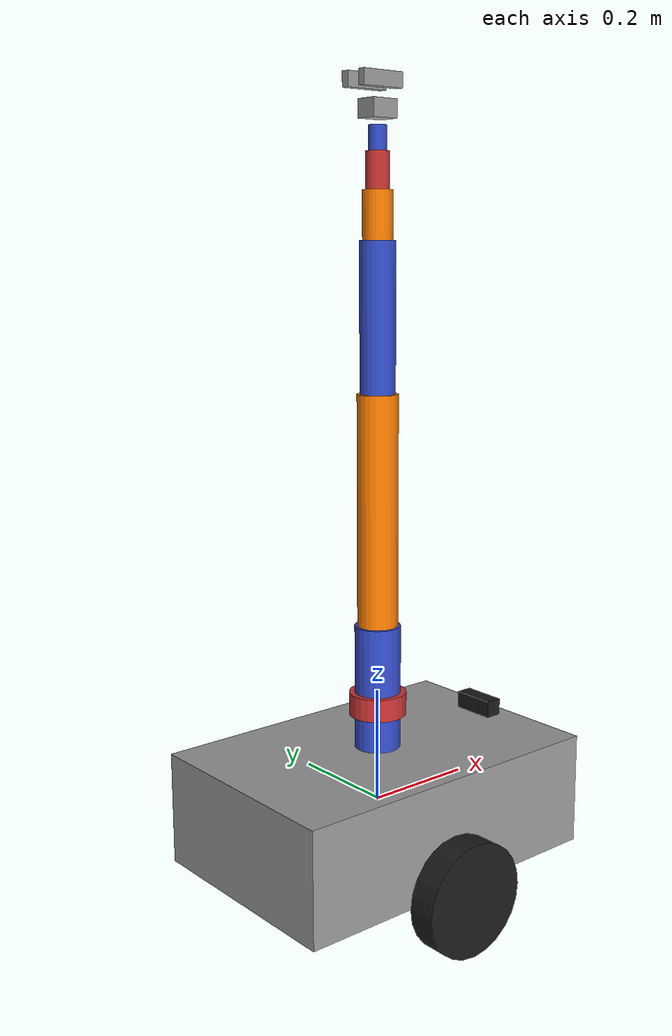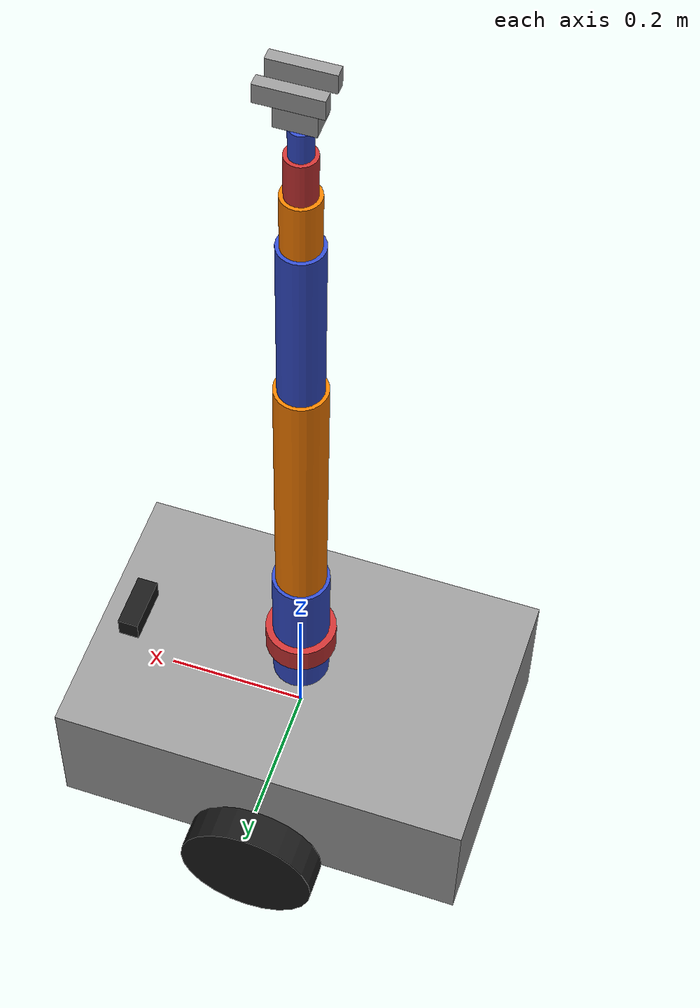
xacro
<?xml version="1.0"?>
<robot xmlns:xacro="http://www.ros.org/wiki/xacro" name="warehouse_mobile_manipulator">

  <!-- PROPERTIES -->
  <xacro:property name="my_pi" value="3.14159265359"/>
  <xacro:property name="mount_height" value="0.02"/>

  <!-- MATERIALS -->
  <material name="blue1">
      <color rgba="0.2 0.3 0.8 1.0"/>
  </material>

  <material name="orange1">
      <color rgba="1.0 0.5 0.0 1.0"/>
  </material>

  <material name="red1">
      <color rgba="0.8 0.2 0.2 1.0"/>
  </material>

  <material name="grey1">
      <color rgba="0.6 0.6 0.6 1.0"/>
  </material>

  <material name="white1">
      <color rgba="0.9 0.9 0.9 1.0"/>
  </material>

  <material name="black1">
      <color rgba="0.1 0.1 0.1 1"/>
  </material>

  <!-- INCLUDE MODULES -->
  <xacro:include filename="$(find warehouse_robot_description)/urdf/mobile_base.urdf.xacro"/>
  <xacro:include filename="$(find warehouse_robot_description)/urdf/manipulator.urdf.xacro"/>
  <xacro:include filename="$(find warehouse_robot_description)/urdf/gripper.urdf.xacro"/>
  <xacro:include filename="$(find warehouse_robot_description)/urdf/sensors.urdf.xacro"/>

  <!-- INSTANTIATE MODULES -->
  <xacro:robot_base/>
  <xacro:manipulator parent="mount_plate"/>
  <xacro:gripper parent="link6"/>
  <xacro:robot_sensors parent="base_link"/>

  <!-- GAZEBO MATERIALS -->
  <gazebo reference="main_base_link">
    <material>Gazebo/Grey</material>
    <mu1>0.2</mu1>
    <mu2>0.2</mu2>
  </gazebo>

  <gazebo reference="right_wheel">
    <material>Gazebo/Black</material>
    <mu1>1.0</mu1>
    <mu2>1.0</mu2>
  </gazebo>

  <gazebo reference="left_wheel">
    <material>Gazebo/Black</material>
    <mu1>1.0</mu1>
    <mu2>1.0</mu2>
  </gazebo>

  <gazebo reference="caster_wheel">
    <material>Gazebo/White</material>
    <mu1>0.1</mu1>
    <mu2>0.1</mu2>
  </gazebo>

  <!-- Arm links -->
  <gazebo reference="link1">
    <material>Gazebo/Blue</material>
    <mu1>0.5</mu1>
    <mu2>0.5</mu2>
  </gazebo>
  <gazebo reference="link2">
    <material>Gazebo/Orange</material>
    <mu1>0.5</mu1>
    <mu2>0.5</mu2>
  </gazebo>
  <gazebo reference="link3">
    <material>Gazebo/Blue</material>
    <mu1>0.5</mu1>
    <mu2>0.5</mu2>
  </gazebo>
  <gazebo reference="link4">
    <material>Gazebo/Orange</material>
    <mu1>0.5</mu1>
    <mu2>0.5</mu2>
  </gazebo>
  <gazebo reference="link5">
    <material>Gazebo/Red</material>
    <mu1>0.5</mu1>
    <mu2>0.5</mu2>
  </gazebo>
  <gazebo reference="link6">
    <material>Gazebo/Blue</material>
    <mu1>0.5</mu1>
    <mu2>0.5</mu2>
  </gazebo>

  <!-- Gripper -->
  <gazebo reference="gripper_base">
    <material>Gazebo/Grey</material>
    <mu1>0.5</mu1>
    <mu2>0.5</mu2>
  </gazebo>
  <gazebo reference="left_finger">
    <material>Gazebo/DarkGrey</material>
    <mu1>1.2</mu1>
    <mu2>1.2</mu2>
  </gazebo>
  <gazebo reference="right_finger">
    <material>Gazebo/DarkGrey</material>
    <mu1>1.2</mu1>
    <mu2>1.2</mu2>
  </gazebo>

  <gazebo>
    <plugin name="gazebo_ros_joint_state_publisher" filename="libgazebo_ros_joint_state_publisher.so">
      <ros>
        <remapping>~/out:=joint_states</remapping>
      </ros>
      <update_rate>50</update_rate>
      <joint_name>joint1</joint_name>
      <joint_name>joint2</joint_name>
      <joint_name>joint3</joint_name>
      <joint_name>joint4</joint_name>
      <joint_name>joint5</joint_name>
      <joint_name>joint6</joint_name>
      <joint_name>left_finger_joint</joint_name>
      <joint_name>right_finger_joint</joint_name>
    </plugin>
  </gazebo>

  <!-- Sensors -->
  <gazebo reference="lidar_link">
    <material>Gazebo/Red</material>
    <sensor type="ray" name="lidar_sensor">
      <pose>0 0 0 0 0 0</pose>
      <visualize>true</visualize>
      <update_rate>10</update_rate>
      <ray>
        <scan>
          <horizontal>
            <samples>360</samples>
            <resolution>1</resolution>
            <min_angle>-3.14159</min_angle>
            <max_angle>3.14159</max_angle>
          </horizontal>
        </scan>
        <range>
          <min>0.10</min>
          <max>30.0</max>
          <resolution>0.01</resolution>
        </range>
      </ray>
      <plugin name="gazebo_ros_lidar" filename="libgazebo_ros_ray_sensor.so">
        <ros>
          <remapping>~/out:=scan</remapping>
        </ros>
        <output_type>sensor_msgs/LaserScan</output_type>
      </plugin>
    </sensor>
  </gazebo>

  <gazebo reference="camera_link">
    <material>Gazebo/Black</material>
    <sensor type="camera" name="camera_sensor">
      <update_rate>30.0</update_rate>
      <camera name="front_camera">
        <horizontal_fov>1.3962634</horizontal_fov>
        <image>
          <width>640</width>
          <height>480</height>
          <format>R8G8B8</format>
        </image>
        <clip>
          <near>0.02</near>
          <far>300</far>
        </clip>
      </camera>
      <plugin name="camera_controller" filename="libgazebo_ros_camera.so">
        <ros>
          <remapping>~/image_raw:=camera/image_raw</remapping>
          <remapping>~/camera_info:=camera/camera_info</remapping>
        </ros>
        <camera_name>front_camera</camera_name>
        <frame_name>camera_link</frame_name>
      </plugin>
    </sensor>
  </gazebo>

  <!-- CONTROL PLUGINS -->
  <gazebo>
    <plugin name="diff_drive_controller" filename="libgazebo_ros_diff_drive.so">
      <ros>
        <namespace>/</namespace>
        <remapping>cmd_vel:=cmd_vel</remapping>
        <remapping>odom:=odom</remapping>
      </ros>
      <update_rate>50</update_rate>
      <left_joint>left_wheel_to_base</left_joint>
      <right_joint>right_wheel_to_base</right_joint>
      <wheel_separation>0.45</wheel_separation>
      <wheel_diameter>0.2</wheel_diameter>
      <max_wheel_torque>20</max_wheel_torque>
      <max_wheel_acceleration>1.0</max_wheel_acceleration>
      <publish_odom>true</publish_odom>
      <publish_odom_tf>true</publish_odom_tf>
      <publish_wheel_tf>true</publish_wheel_tf>
      <odometry_frame>odom</odometry_frame>
      <robot_base_frame>base_link</robot_base_frame>
    </plugin>
  </gazebo>

</robot>

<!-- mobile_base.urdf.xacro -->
<robot xmlns:xacro="http://www.ros.org/wiki/xacro" name="warehouse_robot">

    <!--Robot Base Properties (Variables) -->
    <xacro:property name="base_length" value="0.6"/>
    <xacro:property name="base_width" value="0.4"/>
    <xacro:property name="base_height" value="0.2"/>
    <xacro:property name="base_mass" value="10.0"/>

    <xacro:property name="wheel_radius" value="0.1"/>
    <xacro:property name="wheel_length" value="0.05"/>
    <xacro:property name="wheel_mass" value="0.5"/>

    <xacro:property name="caster_radius" value="0.05"/>
    <xacro:property name="caster_mass" value="1.0"/>

    <xacro:property name="mount_height" value="0.02"/>
    <xacro:property name="mount_radius" value="0.12"/>
    <xacro:property name="mount_mass" value="0.5"/>

    <!--          LINKS                 -->
    <!-- Base Link -->
    <xacro:macro name="robot_base">
        <link name="base_link">
            <visual>
                <origin xyz="0 0 0" rpy="0 0 0"/>
                <geometry>
                    <box size= "${base_length} ${base_width} ${base_height}"/>
                </geometry>
                <material name="grey1"/>
            </visual>
            <collision>
                <origin xyz = "0 0 0" rpy = "0 0 0"/>
                <geometry>
                    <box size="${base_length} ${base_width} ${base_height}"/>
                </geometry>
            </collision>
            <inertial>
                <mass value="${base_mass}" />
                <inertia ixx="0.1" iyy="0.33" izz="0.43"
                        ixy="0.0" ixz="0.0" iyz="0.0"/>
            </inertial>

        </link>

    <!-- Right Wheel -->
        <link name="right_wheel">
            <visual>
                <origin xyz="0 0 0" rpy="1.57 0 0"/>
                <geometry>
                    <cylinder radius="${wheel_radius}" length="${wheel_length}"/>
                </geometry>
                <material name="black1"/>
            </visual>
            <collision>
                <origin xyz="0 0 0" rpy="1.57 0 0"/>
                <geometry>
                    <cylinder radius="${wheel_radius}" length="${wheel_length}"/>
                </geometry>
            </collision>
            <inertial>
                <mass value="${wheel_mass}"/>
                <inertia ixx="0.1" iyy="0.1" izz="0.1"
                    ixy="0.0" ixz="0.0" iyz="0.0"/>
            </inertial>
        </link>

        <!-- Left Wheel-->
        <link name="left_wheel">
            <visual>
                <origin xyz="0 0 0" rpy="1.57 0 0"/>
                <geometry>
                    <cylinder radius="${wheel_radius}" length="${wheel_length}"/>
                </geometry>
                <material name="black1"/>
            </visual>
            <collision>
                <origin xyz="0 0 0" rpy="1.57 0 0"/>
                <geometry>
                    <cylinder radius="${wheel_radius}" length="${wheel_length}"/>
                </geometry>
            </collision>
            <inertial>
                <mass value="${wheel_mass}"/>
                <inertia ixx="0.1" iyy="0.1" izz="0.1"
                    ixy="0.0" ixz="0.0" iyz="0.0"/>
            </inertial>
        </link>

        <!-- Caster Wheel -->
        <link name="caster_wheel">
            <visual>
                <origin xyz="0 0 0" rpy="1.57 0 0"/>
                <geometry>
                    <sphere radius="${caster_radius}"/>
                </geometry>
                <material name="white1"/>
            </visual>
            <collision>
                <origin xyz="0 0 0" rpy="1.57 0 0"/>
                <geometry>
                    <sphere radius="${caster_radius}"/>
                </geometry>
            </collision>
            <inertial>
                <mass value="${caster_mass}"/>
                <inertia ixx="0.1" iyy="0.1" izz="0.1"
                    ixy="0.0" ixz="0.0" iyz="0.0"/>
            </inertial>
        </link>

        <link name="mount_plate">
            <visual>
                <origin xyz="0 0 ${mount_height/2}" rpy="0 0 0"/>
                <geometry>
                    <cylinder radius="${mount_radius}" length="${mount_height}"/>
                </geometry>
                <material name="black1"/>
            </visual>
            <collision>
                <origin xyz="0 0 ${mount_height/2}" rpy="0 0 0"/>
                <geometry>
                    <cylinder radius="${mount_radius}" length="${mount_height}"/>
                </geometry>
            </collision>
            <inertial>
                <mass value="${mount_mass}"/>
                <inertia ixx="${mount_mass*(3*mount_radius*mount_radius + mount_height)/12}"
                            iyy="${mount_mass*(3*mount_radius*mount_radius + mount_height)/12}"
                            izz="${base_mass*(mount_radius*mount_radius)/2}"
                            iyz="0.0"
                            ixz="0.0"
                            ixy="0.0"/>
            </inertial>

        </link>

        <!--          JOINTS                -->
        <!-- right to base wheel -->
        <joint name="right_wheel_to_base" type="continuous">
            <parent link="base_link"/>
            <child link="right_wheel"/>
            <origin xyz="0 -0.225 -${wheel_radius}" rpy="0 0 0"/>
            <axis xyz="0 1 0"/>
        </joint>
        <!-- left wheel to base  -->
        <joint name="left_wheel_to_base" type="continuous">
            <parent link="base_link"/>
            <child link="left_wheel"/>
            <origin xyz="0 0.225 -${wheel_radius}" rpy="0 0 0"/>
            <axis xyz="0 1 0"/>
        </joint>
        <!-- Caster Wheel to base-->
        <joint name="caster_wheel_to_base" type="fixed">
            <parent link="base_link"/>
            <child link="caster_wheel"/>
            <origin xyz="0.25 0 -0.15" rpy="0 0 0"/>
            <axis xyz="0 1 0"/>
        </joint>
        <!-- Mount Link to Base -->
        <joint name="mount_to_base" type="fixed">
            <parent link="base_link"/>
            <child link="mount_plate"/>
            <origin xyz="0 0 0" rpy="0 0 0"/>
        </joint>
    </xacro:macro>

</robot>

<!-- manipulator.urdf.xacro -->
<robot xmlns:xacro="http://www.ros.org/wiki/xacro">

    <!-- LINK DIMENSIONS -->

    <!-- Link 1- Rotating base tower -->
    <xacro:property name="link1_length" value="0.3"/>
    <xacro:property name="link1_radius" value="0.04"/>
    <xacro:property name="link1_mass" value="1.0"/>

    <!-- Link2 - Shoulder Pitch -->
    <xacro:property name="link2_length" value="0.4"/>
    <xacro:property name="link2_radius" value="0.035"/>
    <xacro:property name="link2_mass" value="0.8"/>

    <!-- Link3 - Shoulder Roll -->
    <xacro:property name="link3_length" value="0.25"/>
    <xacro:property name="link3_radius" value="0.03"/>
    <xacro:property name="link3_mass" value="0.6"/>

    <!-- Link4 - Elbow Pitch -->
    <xacro:property name="link4_length" value="0.08"/>
    <xacro:property name="link4_radius" value="0.025"/>
    <xacro:property name="link4_mass" value="0.4"/>

    <!-- Link5 - Shoulder Pitch -->
    <xacro:property name="link5_length" value="0.06"/>
    <xacro:property name="link5_radius" value="0.020"/>
    <xacro:property name="link5_mass" value="0.2"/>

    <!-- Link6 - Shoulder Pitch -->
    <xacro:property name="link6_length" value="0.04"/>
    <xacro:property name="link6_radius" value="0.015"/>
    <xacro:property name="link6_mass" value="0.1"/>

    <!-- INERTIA MACRO -->
    <xacro:macro name="cylinder_inertia" params="mass radius length">
        <inertia ixx = "${mass * (3*radius*radius + length*length)/12}"
                iyy = "${mass * (3*radius*radius + length*length)/12}"
                izz = "${mass * (radius*radius)/2}"
                iyz = "0.0"
                ixz = "0.0"
                ixy = "0.0" />
    </xacro:macro>

    <!-- Main Manipulator Links Macro -->
    <xacro:macro name="manipulator" params="parent">
        <!-- LINK 1 - Rotating Yaw (base Yaw) -->
        <link name="link1">
            <visual>
                <origin xyz="0 0 ${link1_length/2}" rpy="0 0 0"/>
                <geometry>
                    <cylinder radius="${link1_radius}" length="${link1_length}"/>
                </geometry>
                <material name="blue1"/>
            </visual>
            <collision>
                <origin xyz="0 0 ${link1_length/2}" rpy="0 0 0"/>
                <geometry>
                    <cylinder radius="${link1_radius}" length="${link1_length}"/>
                </geometry>
            </collision>
            <inertial>
                <mass value="${link1_mass}"/>
                <xacro:cylinder_inertia mass="${link1_mass}" radius="${link1_radius}" length="${link1_length}"/>
                <origin xyz="0 0 ${link1_length/2}" rpy = "0 0 0"/>
            </inertial>

        </link>

        <!-- LINK 2 - Shoulder Pitch -->
        <link name="link2">
            <visual>
                <origin xyz="0 0 ${link2_length/2}" rpy="0 0 0"/>
                <geometry>
                    <cylinder radius="${link2_radius}" length="${link2_length}"/>
                </geometry>
                <material name="orange1"/>
            </visual>
            <collision>
                <origin xyz="0 0 ${link2_length/2}" rpy="0 0 0"/>
                <geometry>
                    <cylinder radius="${link2_radius}" length="${link2_length}"/>
                </geometry>
            </collision>
            <inertial>
                <mass value="${link2_mass}"/>
                <xacro:cylinder_inertia mass="${link2_mass}" radius="${link2_radius}" length="${link2_length}"/>
                <origin xyz="0 0 ${link2_length/2}" rpy = "0 0 0"/>
            </inertial>

        </link>

        <!-- LINK 3 - Shoulder Roll -->
        <link name="link3">
            <visual>
                <origin xyz="0 0 ${link3_length/2}" rpy="0 0 0"/>
                <geometry>
                    <cylinder radius="${link3_radius}" length="${link3_length}"/>
                </geometry>
                <material name="blue1"/>
            </visual>
            <collision>
                <origin xyz="0 0 ${link3_length/2}" rpy="0 0 0"/>
                <geometry>
                    <cylinder radius="${link3_radius}" length="${link3_length}"/>
                </geometry>
            </collision>
            <inertial>
                <mass value="${link3_mass}"/>
                <xacro:cylinder_inertia mass="${link3_mass}" radius="${link3_radius}" length="${link3_length}"/>
                <origin xyz="0 0 ${link3_length/2}" rpy = "0 0 0"/>
            </inertial>

        </link>

        <!-- LINK 4 - Elbow Pitch -->
        <link name="link4">
            <visual>
                <origin xyz="0 0 ${link4_length/2}" rpy="0 0 0"/>
                <geometry>
                    <cylinder radius="${link4_radius}" length="${link4_length}"/>
                </geometry>
                <material name="orange1"/>
            </visual>
            <collision>
                <origin xyz="0 0 ${link4_length/2}" rpy="0 0 0"/>
                <geometry>
                    <cylinder radius="${link4_radius}" length="${link4_length}"/>
                </geometry>
            </collision>
            <inertial>
                <mass value="${link4_mass}"/>
                <xacro:cylinder_inertia mass="${link4_mass}" radius="${link4_radius}" length="${link4_length}"/>
                <origin xyz="0 0 ${link4_length/2}" rpy = "0 0 0"/>
            </inertial>

        </link>

        <!-- LINK 5 - Wrist Pitch -->
        <link name="link5">
            <visual>
                <origin xyz="0 0 ${link5_length/2}" rpy="0 0 0"/>
                <geometry>
                    <cylinder radius="${link5_radius}" length="${link5_length}"/>
                </geometry>
                <material name="red1"/>
            </visual>
            <collision>
                <origin xyz="0 0 ${link5_length/2}" rpy="0 0 0"/>
                <geometry>
                    <cylinder radius="${link5_radius}" length="${link5_length}"/>
                </geometry>
            </collision>
            <inertial>
                <mass value="${link5_mass}"/>
                <xacro:cylinder_inertia mass="${link5_mass}" radius="${link5_radius}" length="${link5_length}"/>
                <origin xyz="0 0 ${link5_length/2}" rpy = "0 0 0"/>
            </inertial>

        </link>

        <!-- LINK 6 - Wrist Roll -->
        <link name="link6">
            <visual>
                <origin xyz="0 0 ${link6_length/2}" rpy="0 0 0"/>
                <geometry>
                    <cylinder radius="${link6_radius}" length="${link6_length}"/>
                </geometry>
                <material name="blue1"/>
            </visual>
            <collision>
                <origin xyz="0 0 ${link6_length/2}" rpy="0 0 0"/>
                <geometry>
                    <cylinder radius="${link6_radius}" length="${link6_length}"/>
                </geometry>
            </collision>
            <inertial>
                <mass value="${link6_mass}"/>
                <xacro:cylinder_inertia mass="${link6_mass}" radius="${link6_radius}" length="${link6_length}"/>
                <origin xyz="0 0 ${link6_length/2}" rpy = "0 0 0"/>
            </inertial>

        </link>

        <!-- JOINTS -->
        <!-- JOINT 1: BASE to link 1 (Continuous - spins forever)-->
        <joint name="joint1" type="continuous">
            <parent link="${parent}"/>
            <child link="link1"/>
            <origin xyz="0 0 ${mount_height}" rpy="0 0 0"/>
            <axis xyz="0 0 1"/> <!-- Rotates around Z axis-->
            <dynamics damping="0.7" friction="0.5"/>
        </joint>

        <!-- JOINT 2: link1 to link 2 Shoulder Pitch(revolute - has limits)-->
        <joint name="joint2" type="revolute">
            <parent link="link1"/>
            <child link="link2"/>
            <origin xyz="0 0 ${link1_length}" rpy="0 0 0"/>
            <axis xyz="0 1 0"/> <!-- Rotates around the Y axis (pitch)-->
            <limit lower="${-my_pi/2}" upper="${my_pi/2}" effort= "100" velocity="1.0"/>
            <dynamics damping="0.7" friction="0.5"/>
        </joint>

        <!-- JOINT 3: link2 to link3 Elbow Pitch(continuous - spins forever)- -->
        <joint name="joint3" type="revolute">
            <parent link="link2"/>
            <child link="link3"/>
            <origin xyz="0 0 ${link2_length}" rpy="0 0 0"/>
            <axis xyz="0 1 0"/>
            <dynamics damping="0.5" friction="0.3"/>
            <limit lower="${-my_pi*3/4}" upper="${my_pi*3/4}" velocity="1.0" effort="50"/>
        </joint>

        <!-- JOINT 4: link3 - link4 Wrist Roll-->
        <joint name="joint4" type="continuous">
            <parent link="link3"/>
            <child link="link4"/>
            <origin xyz="0 0 ${link3_length}" rpy="0 0 0"/>
            <axis xyz="0 0 1"/> <!-- Roll around Z-->
            <dynamics damping="0.3" friction="0.2"/>
        </joint>

        <!-- JOINT 5: link4 - link5 Wrist Roll-->
        <joint name="joint5" type="revolute">
            <parent link="link4"/>
            <child link="link5"/>
            <origin xyz="0 0 ${link4_length}" rpy="0 0 0"/>
            <axis xyz="0 1 0"/>
            <dynamics damping="0.3" friction="0.2"/>
            <limit lower="${-my_pi/2}" upper="${my_pi/2}" effort="20" velocity="1.0"/>
        </joint>

        <!-- JOINT 6: link5 - link6 End Effector Roll-->
        <joint name="joint6" type="continuous">
            <parent link="link5"/>
            <child link="link6"/>
            <origin xyz="0 0 ${link5_length}" rpy="0 0 0"/>
            <axis xyz="0 0 1"/>
            <dynamics damping="0.2" friction="0.1"/>
        </joint>
    </xacro:macro>
</robot>

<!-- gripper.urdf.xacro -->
<robot xmlns:xacro="http://www.ros.org/wiki/xacro">

    <!-- LINK DIMENSIONS -->

    <!-- Link6 - Shoulder Pitch -->
    <xacro:property name="link6_length" value="0.04"/>

    <!-- Gripper Dimensions  -->
    <xacro:property name="gripper_base_length" value="0.05"/>
    <xacro:property name="gripper_base_width" value="0.04"/>
    <xacro:property name="gripper_base_height" value="0.03"/>
    <xacro:property name="gripper_base_mass" value="0.1"/>

    <xacro:property name="finger_length" value="0.08"/>
    <xacro:property name="finger_width" value="0.015"/>
    <xacro:property name="finger_height" value="0.025"/>
    <xacro:property name="finger_mass" value="0.05"/>

    <!-- INERTIA MACRO -->

    <!-- Box inertia for Gripper Part-->
    <xacro:macro name="box_inertia" params="mass x y z">
        <inertia ixx = "${mass * (y*y + z*z)/12}"
                iyy = "${mass * (x*x + z*z)/12}"
                izz = "${mass * (x*x +y*y)/12}"
                iyz = "0.0"
                ixz = "0.0"
                ixy = "0.0" />
    </xacro:macro>

    <!-- Main Manipulator Links Macro -->
    <xacro:macro name="gripper" params="parent">
        <!-- GRIPPER BASE -->
      <link name="gripper_base">
        <visual>
          <origin xyz="0 0 ${gripper_base_length/2}" rpy="0 0 0"/>
          <geometry>
            <box size="${gripper_base_length} ${gripper_base_width} ${gripper_base_height}"/>
          </geometry>
          <material name="grey1"/>
        </visual>
        <collision>
          <origin xyz="0 0 ${gripper_base_length/2}" rpy="0 0 0"/>
          <geometry>
            <box size="${gripper_base_length} ${gripper_base_width} ${gripper_base_height}"/>
          </geometry>
        </collision>
        <inertial>
          <mass value="${gripper_base_mass}"/>
          <xacro:box_inertia mass="${gripper_base_mass}" x="${gripper_base_length}" y="${gripper_base_width}" z="${gripper_base_height}"/>
          <origin xyz="0 0 ${gripper_base_length/2}" rpy = "0 0 0"/>
        </inertial>

      </link>

        <!-- LEFT FINGER -->
      <link name="left_finger">
        <visual>
          <origin xyz="0 0 ${finger_length/2}" rpy="0 0 0"/>
          <geometry>
            <box size="${finger_length} ${finger_width} ${finger_height}"/>
          </geometry>
          <material name="grey1"/>
        </visual>
        <collision>
          <origin xyz="0 0 ${finger_length/2}" rpy="0 0 0"/>
          <geometry>
              <box size="${finger_length} ${finger_width} ${finger_height}"/>
          </geometry>
        </collision>
        <inertial>
          <mass value="${finger_mass}"/>
          <xacro:box_inertia mass="${finger_mass}" x="${finger_length}" y="${finger_width}" z="${finger_height}"/>
          <origin xyz="0 0 ${finger_length/2}" rpy = "0 0 0"/>
        </inertial>

      </link>

        <!-- RIGHT FINGER -->
        <link name="right_finger">
            <visual>
                <origin xyz="0 0 ${finger_length/2}" rpy="0 0 0"/>
                <geometry>
                    <box size="${finger_length} ${finger_width} ${finger_height}"/>
                </geometry>
                <material name="grey1"/>
            </visual>
            <collision>
                <origin xyz="0 0 ${finger_length/2}" rpy="0 0 0"/>
                <geometry>
                    <box size="${finger_length} ${finger_width} ${finger_height}"/>
                </geometry>
            </collision>
            <inertial>
                <mass value="${finger_mass}"/>
                <xacro:box_inertia mass="${finger_mass}" x="${finger_length}" y="${finger_width}" z="${finger_height}"/>
                <origin xyz="0 0 ${finger_length/2}" rpy = "0 0 0"/>
            </inertial>

        </link>

        <!-- JOINTS -->
        <!-- Link 6 to Gripper -->
        <joint name="gripper_base_joint" type="fixed">
          <parent link="${parent}"/>
          <child link="gripper_base"/>
          <origin xyz="0 0 ${link6_length}" rpy="0 0 0"/>
        </joint>

        <!-- Left Finger to Gripper Base-->
        <joint name="left_finger_joint" type="prismatic">
          <parent link="gripper_base"/>
          <child link="left_finger"/>
          <origin xyz="0 ${gripper_base_width/2 +finger_height/2} ${gripper_base_height}" rpy="0 0 0"/>
          <axis xyz="0 0 1"/>
          <dynamics damping="0.5" friction="0.5"/>
          <limit lower="0" upper="0.04"  effort="10" velocity="0.1"/>
        </joint>

        <!-- Right Finger to Gripper Base-->
        <joint name="right_finger_joint" type="prismatic">
          <parent link="gripper_base"/>
          <child link="right_finger"/>
          <origin xyz="0 ${-gripper_base_width/2 +finger_height/2} ${gripper_base_height}" rpy="0 0 0"/>
          <axis xyz="0 0 1"/>
          <dynamics damping="0.5" friction="0.5"/>
          <limit lower="0" upper="0.04"  effort="10" velocity="0.1"/>
        </joint>
    </xacro:macro>
</robot>

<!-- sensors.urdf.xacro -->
<robot xmlns:xacro="http://www.ros.org/wiki/xacro">

  <xacro:macro name="robot_sensors" params="parent">

    <!-- Lidar Sensor -->
    <link name="lidar_link">
      <visual>
        <geometry>
          <cylinder radius="0.05" length="0.04"/>
        </geometry>
        <material name="red1"/>
      </visual>
      <collision>
        <geometry>
          <cylinder radius="0.05" length="0.04"/>
        </geometry>
      </collision>
      <inertial>
        <mass value="0.2"/>
        <inertia ixx="0.0001" iyy="0.0001" izz ="0.0001" ixy="0.0" iyz="0.0" ixz="0.0"/>
      </inertial>
    </link>

    <!-- Camera Sensor -->
    <link name="camera_link">
      <visual>
        <geometry>
          <box size="0.03 0.08 0.03"/>
        </geometry>
        <material name="black1"/>
      </visual>
      <collision>
        <geometry>
          <box size="0.03 0.08 0.03"/>
        </geometry>
      </collision>
      <inertial>
        <mass value="0.1"/>
        <inertia ixx="0.0001" iyy="0.0001" izz="0.0001" ixy="0.0" iyz="0.0" ixz="0.0"/>
      </inertial>
    </link>

    <!-- Joints -->
    <joint name="lidar_joint" type="fixed">
      <parent link="${parent}"/>
      <child link="lidar_link"/>
      <origin xyz="0 0 0.18" rpy="0 0 0"/>
    </joint>

    <joint name="camera_joint" type="fixed">
      <parent link="${parent}"/>
      <child link="camera_link"/>
      <origin xyz="0.25 0 0.12" rpy="0 0 0"/>
    </joint>

  </xacro:macro>

</robot>
